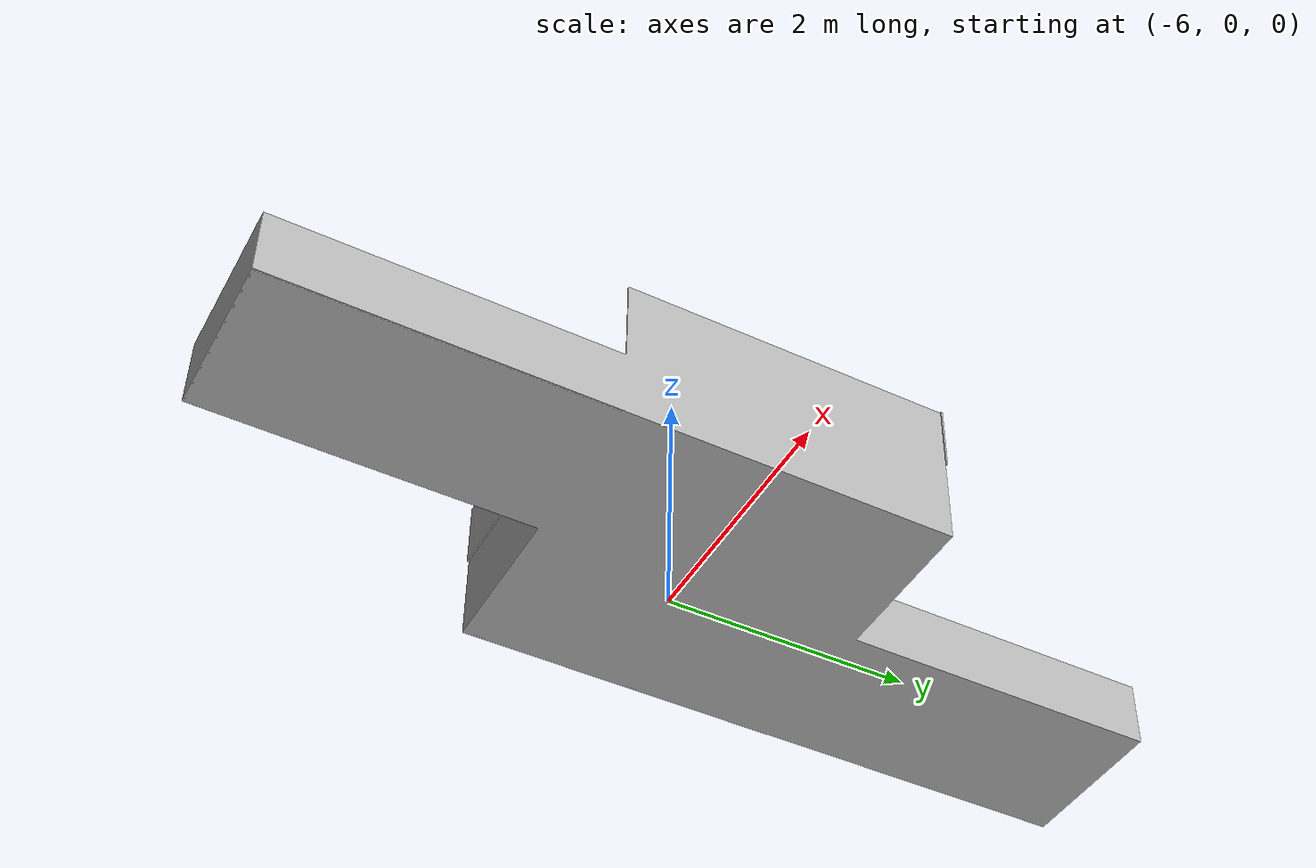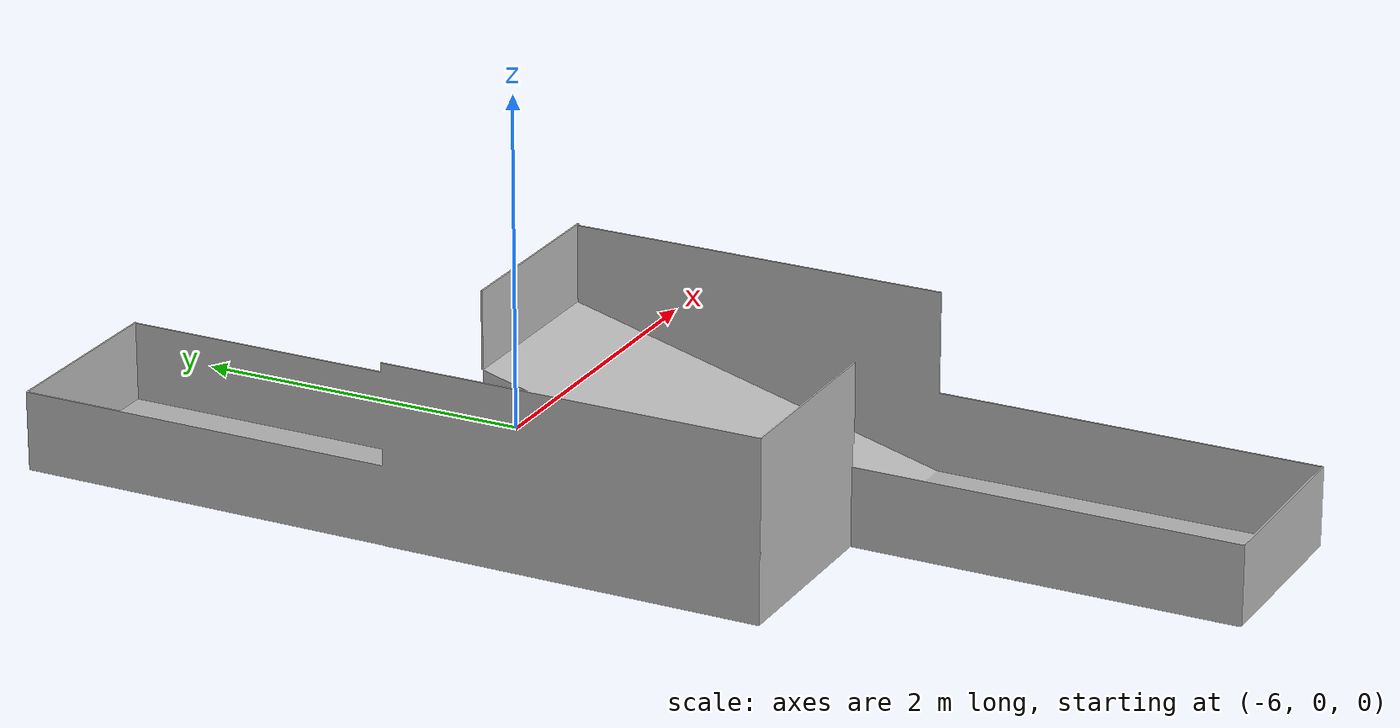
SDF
<?xml version="1.0" ?>
<sdf version="1.6">
  <model name="default_slope">
    <static>true</static>
    <pose>-1 0 2 1.5708 0 0</pose>
    <link name="link">
      <collision name="collision">
        <geometry>
          <mesh>
            <scale>0.001 0.001 0.001</scale>
            <uri>model://default_slope/default_slope.stl</uri>
          </mesh>
        </geometry>
        <surface>
          <friction>
            <ode>
              <mu>100</mu>
              <mu2>50</mu2>
            </ode>
          </friction>
        </surface>
      </collision>
      <visual name="visual">
        <geometry>
          <mesh>
            <scale>0.001 0.001 0.001</scale>
            <uri>model://default_slope/default_slope.stl</uri>
          </mesh>
        </geometry>
      </visual>
    </link>
  </model>
</sdf>
